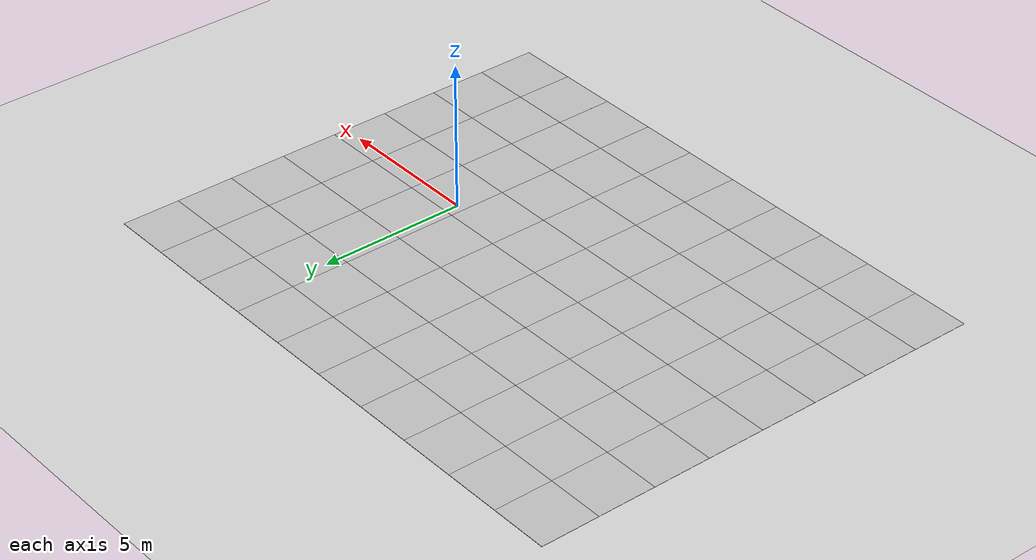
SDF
<sdf version="1.6">
 <world name="default">
  <model name="ground_plane">
   <static>1</static>
   <link name="link">
    <collision name="collision">
     <geometry><plane><normal>0 0 1</normal><size>100 100</size></plane></geometry>
     <surface>
      <contact><collide_bitmask>65535</collide_bitmask></contact>
      <friction><ode><mu>100</mu><mu2>50</mu2></ode></friction>
     </surface>
    </collision>
    <visual name="visual">
     <cast_shadows>0</cast_shadows>
     <geometry><plane><normal>0 0 1</normal><size>100 100</size></plane></geometry>
     <material>
      <script><uri>file://media/materials/scripts/gazebo.material</uri><name>Gazebo/Grey</name></script>
     </material>
    </visual>
   </link>
  </model>
  <model name="Starting_Pen_Floor">
   <link name="link">
    <inertial>
     <mass>1</mass>
     <inertia><ixx>1</ixx><ixy>0</ixy><ixz>0</ixz><iyy>1</iyy><iyz>0</iyz><izz>1</izz></inertia>
    </inertial>
    <visual name="visual_floor_31">
     <pose>-10.21 6.35 0 0 -0 0</pose>
     <geometry><box><size>2 2 0.01</size></box></geometry>
     <material>
      <script>
       <uri>model://starting_pen/materials/scripts</uri>
       <uri>model://starting_pen/materials/textures</uri>
       <name>StartingPen/Floor</name>
      </script>
      <shader type="vertex"><normal_map>__default__</normal_map></shader>
     </material>
    </visual>
    <visual name="visual_floor_18">
     <pose>3.79 2.35 0 0 -0 0</pose>
     <geometry><box><size>2 2 0.01</size></box></geometry>
     <material>
      <script>
       <uri>model://starting_pen/materials/scripts</uri>
       <uri>model://starting_pen/materials/textures</uri>
       <name>StartingPen/Floor</name>
      </script>
      <shader type="vertex"><normal_map>__default__</normal_map></shader>
     </material>
    </visual>
    <visual name="visual_floor_19">
     <pose>5.79 2.35 0 0 -0 0</pose>
     <geometry><box><size>2 2 0.01</size></box></geometry>
     <material>
      <script>
       <uri>model://starting_pen/materials/scripts</uri>
       <uri>model://starting_pen/materials/textures</uri>
       <name>StartingPen/Floor</name>
      </script>
      <shader type="vertex"><normal_map>__default__</normal_map></shader>
     </material>
    </visual>
    <visual name="visual_floor_1">
     <pose>-10.21 0.35 0 0 -0 0</pose>
     <geometry><box><size>2 2 0.01</size></box></geometry>
     <material>
      <script>
       <uri>model://starting_pen/materials/scripts</uri>
       <uri>model://starting_pen/materials/textures</uri>
       <name>StartingPen/Floor</name>
      </script>
      <shader type="vertex"><normal_map>__default__</normal_map></shader>
     </material>
    </visual>
    <visual name="visual_floor_50">
     <pose>-12.21 10.35 0 0 -0 0</pose>
     <geometry><box><size>2 2 0.01</size></box></geometry>
     <material>
      <script>
       <uri>model://starting_pen/materials/scripts</uri>
       <uri>model://starting_pen/materials/textures</uri>
       <name>StartingPen/Floor</name>
      </script>
      <shader type="vertex"><normal_map>__default__</normal_map></shader>
     </material>
    </visual>
    <visual name="visual_floor_44">
     <pose>-4.21 8.35 0 0 -0 0</pose>
     <geometry><box><size>2 2 0.01</size></box></geometry>
     <material>
      <script>
       <uri>model://starting_pen/materials/scripts</uri>
       <uri>model://starting_pen/materials/textures</uri>
       <name>StartingPen/Floor</name>
      </script>
      <shader type="vertex"><normal_map>__default__</normal_map></shader>
     </material>
    </visual>
    <visual name="visual_floor_15">
     <pose>-2.21 2.35 0 0 -0 0</pose>
     <geometry><box><size>2 2 0.01</size></box></geometry>
     <material>
      <script>
       <uri>model://starting_pen/materials/scripts</uri>
       <uri>model://starting_pen/materials/textures</uri>
       <name>StartingPen/Floor</name>
      </script>
      <shader type="vertex"><normal_map>__default__</normal_map></shader>
     </material>
    </visual>
    <visual name="visual_floor_69">
     <pose>5.79 12.35 0 0 -0 0</pose>
     <geometry><box><size>2 2 0.01</size></box></geometry>
     <material>
      <script>
       <uri>model://starting_pen/materials/scripts</uri>
       <uri>model://starting_pen/materials/textures</uri>
       <name>StartingPen/Floor</name>
      </script>
      <shader type="vertex"><normal_map>__default__</normal_map></shader>
     </material>
    </visual>
    <visual name="visual_floor_60">
     <pose>-12.21 12.35 0 0 -0 1.5707</pose>
     <geometry><box><size>2 2 0.01</size></box></geometry>
     <material>
      <script>
       <uri>model://starting_pen/materials/scripts</uri>
       <uri>model://starting_pen/materials/textures</uri>
       <name>StartingPen/FloorStripped</name>
      </script>
      <shader type="vertex"><normal_map>__default__</normal_map></shader>
     </material>
    </visual>
    <visual name="visual_floor_49">
     <pose>5.79 8.35 0 0 -0 0</pose>
     <geometry><box><size>2 2 0.01</size></box></geometry>
     <material>
      <script>
       <uri>model://starting_pen/materials/scripts</uri>
       <uri>model://starting_pen/materials/textures</uri>
       <name>StartingPen/Floor</name>
      </script>
      <shader type="vertex"><normal_map>__default__</normal_map></shader>
     </material>
    </visual>
    <visual name="visual_floor_78">
     <pose>3.79 14.35 0 0 -0 0</pose>
     <geometry><box><size>2 2 0.01</size></box></geometry>
     <material>
      <script>
       <uri>model://starting_pen/materials/scripts</uri>
       <uri>model://starting_pen/materials/textures</uri>
       <name>StartingPen/FloorStripped</name>
      </script>
      <shader type="vertex"><normal_map>__default__</normal_map></shader>
     </material>
    </visual>
    <visual name="visual_floor_46">
     <pose>-0.21 8.35 0 0 -0 1.5707</pose>
     <geometry><box><size>2 2 0.01</size></box></geometry>
     <material>
      <script>
       <uri>model://starting_pen/materials/scripts</uri>
       <uri>model://starting_pen/materials/textures</uri>
       <name>StartingPen/FloorStripped</name>
      </script>
      <shader type="vertex"><normal_map>__default__</normal_map></shader>
     </material>
    </visual>
    <visual name="visual_floor_24">
     <pose>-4.21 4.35 0 0 -0 0</pose>
     <geometry><box><size>2 2 0.01</size></box></geometry>
     <material>
      <script>
       <uri>model://starting_pen/materials/scripts</uri>
       <uri>model://starting_pen/materials/textures</uri>
       <name>StartingPen/Floor</name>
      </script>
      <shader type="vertex"><normal_map>__default__</normal_map></shader>
     </material>
    </visual>
    <visual name="visual_floor_67">
     <pose>1.79 12.35 0 0 -0 0</pose>
     <geometry><box><size>2 2 0.01</size></box></geometry>
     <material>
      <script>
       <uri>model://starting_pen/materials/scripts</uri>
       <uri>model://starting_pen/materials/textures</uri>
       <name>StartingPen/Floor</name>
      </script>
      <shader type="vertex"><normal_map>__default__</normal_map></shader>
     </material>
    </visual>
    <visual name="visual_floor_8">
     <pose>3.79 0.35 0 0 -0 0</pose>
     <geometry><box><size>2 2 0.01</size></box></geometry>
     <material>
      <script>
       <uri>model://starting_pen/materials/scripts</uri>
       <uri>model://starting_pen/materials/textures</uri>
       <name>StartingPen/Floor</name>
      </script>
      <shader type="vertex"><normal_map>__default__</normal_map></shader>
     </material>
    </visual>
    <visual name="visual_floor_7">
     <pose>1.79 0.35 0 0 -0 1.5707</pose>
     <geometry><box><size>2 2 0.01</size></box></geometry>
     <material>
      <script>
       <uri>model://starting_pen/materials/scripts</uri>
       <uri>model://starting_pen/materials/textures</uri>
       <name>StartingPen/FloorStripped</name>
      </script>
      <shader type="vertex"><normal_map>__default__</normal_map></shader>
     </material>
    </visual>
    <visual name="visual_floor_4">
     <pose>-4.21 0.35 0 0 -0 0</pose>
     <geometry><box><size>2 2 0.01</size></box></geometry>
     <material>
      <script>
       <uri>model://starting_pen/materials/scripts</uri>
       <uri>model://starting_pen/materials/textures</uri>
       <name>StartingPen/Floor</name>
      </script>
      <shader type="vertex"><normal_map>__default__</normal_map></shader>
     </material>
    </visual>
    <visual name="visual_floor_43">
     <pose>-6.21 8.35 0 0 -0 0</pose>
     <geometry><box><size>2 2 0.01</size></box></geometry>
     <material>
      <script>
       <uri>model://starting_pen/materials/scripts</uri>
       <uri>model://starting_pen/materials/textures</uri>
       <name>StartingPen/Floor</name>
      </script>
      <shader type="vertex"><normal_map>__default__</normal_map></shader>
     </material>
    </visual>
    <visual name="visual_floor_47">
     <pose>1.79 8.35 0 0 -0 0</pose>
     <geometry><box><size>2 2 0.01</size></box></geometry>
     <material>
      <script>
       <uri>model://starting_pen/materials/scripts</uri>
       <uri>model://starting_pen/materials/textures</uri>
       <name>StartingPen/Floor</name>
      </script>
      <shader type="vertex"><normal_map>__default__</normal_map></shader>
     </material>
    </visual>
    <visual name="visual_floor_70">
     <pose>-12.21 14.35 0 0 -0 0</pose>
     <geometry><box><size>2 2 0.01</size></box></geometry>
     <material>
      <script>
       <uri>model://starting_pen/materials/scripts</uri>
       <uri>model://starting_pen/materials/textures</uri>
       <name>StartingPen/Floor</name>
      </script>
      <shader type="vertex"><normal_map>__default__</normal_map></shader>
     </material>
    </visual>
    <visual name="visual_floor_29">
     <pose>5.79 4.35 0 0 -0 1.5707</pose>
     <geometry><box><size>2 2 0.01</size></box></geometry>
     <material>
      <script>
       <uri>model://starting_pen/materials/scripts</uri>
       <uri>model://starting_pen/materials/textures</uri>
       <name>StartingPen/FloorStripped</name>
      </script>
      <shader type="vertex"><normal_map>__default__</normal_map></shader>
     </material>
    </visual>
    <visual name="visual_floor_68">
     <pose>3.79 12.35 0 0 -0 0</pose>
     <geometry><box><size>2 2 0.01</size></box></geometry>
     <material>
      <script>
       <uri>model://starting_pen/materials/scripts</uri>
       <uri>model://starting_pen/materials/textures</uri>
       <name>StartingPen/Floor</name>
      </script>
      <shader type="vertex"><normal_map>__default__</normal_map></shader>
     </material>
    </visual>
    <visual name="visual_floor_34">
     <pose>-4.21 6.35 0 0 -0 0</pose>
     <geometry><box><size>2 2 0.01</size></box></geometry>
     <material>
      <script>
       <uri>model://starting_pen/materials/scripts</uri>
       <uri>model://starting_pen/materials/textures</uri>
       <name>StartingPen/Floor</name>
      </script>
      <shader type="vertex"><normal_map>__default__</normal_map></shader>
     </material>
    </visual>
    <visual name="visual_floor_16">
     <pose>-0.21 2.35 0 0 -0 1.5707</pose>
     <geometry><box><size>2 2 0.01</size></box></geometry>
     <material>
      <script>
       <uri>model://starting_pen/materials/scripts</uri>
       <uri>model://starting_pen/materials/textures</uri>
       <name>StartingPen/FloorStripped</name>
      </script>
      <shader type="vertex"><normal_map>__default__</normal_map></shader>
     </material>
    </visual>
    <visual name="visual_floor_35">
     <pose>-2.21 6.35 0 0 -0 1.5707</pose>
     <geometry><box><size>2 2 0.01</size></box></geometry>
     <material>
      <script>
       <uri>model://starting_pen/materials/scripts</uri>
       <uri>model://starting_pen/materials/textures</uri>
       <name>StartingPen/FloorStripped</name>
      </script>
      <shader type="vertex"><normal_map>__default__</normal_map></shader>
     </material>
    </visual>
    <visual name="visual_floor_32">
     <pose>-8.21 6.35 0 0 -0 0</pose>
     <geometry><box><size>2 2 0.01</size></box></geometry>
     <material>
      <script>
       <uri>model://starting_pen/materials/scripts</uri>
       <uri>model://starting_pen/materials/textures</uri>
       <name>StartingPen/Floor</name>
      </script>
      <shader type="vertex"><normal_map>__default__</normal_map></shader>
     </material>
    </visual>
    <visual name="visual_floor_53">
     <pose>-6.21 10.35 0 0 -0 1.5707</pose>
     <geometry><box><size>2 2 0.01</size></box></geometry>
     <material>
      <script>
       <uri>model://starting_pen/materials/scripts</uri>
       <uri>model://starting_pen/materials/textures</uri>
       <name>StartingPen/FloorStripped</name>
      </script>
      <shader type="vertex"><normal_map>__default__</normal_map></shader>
     </material>
    </visual>
    <visual name="visual_floor_59">
     <pose>5.79 10.35 0 0 -0 0</pose>
     <geometry><box><size>2 2 0.01</size></box></geometry>
     <material>
      <script>
       <uri>model://starting_pen/materials/scripts</uri>
       <uri>model://starting_pen/materials/textures</uri>
       <name>StartingPen/Floor</name>
      </script>
      <shader type="vertex"><normal_map>__default__</normal_map></shader>
     </material>
    </visual>
    <visual name="visual_floor_48">
     <pose>3.79 8.35 0 0 -0 0</pose>
     <geometry><box><size>2 2 0.01</size></box></geometry>
     <material>
      <script>
       <uri>model://starting_pen/materials/scripts</uri>
       <uri>model://starting_pen/materials/textures</uri>
       <name>StartingPen/Floor</name>
      </script>
      <shader type="vertex"><normal_map>__default__</normal_map></shader>
     </material>
    </visual>
    <visual name="visual_floor_6">
     <pose>-0.21 0.35 0 0 -0 0</pose>
     <geometry><box><size>2 2 0.01</size></box></geometry>
     <material>
      <script>
       <uri>model://starting_pen/materials/scripts</uri>
       <uri>model://starting_pen/materials/textures</uri>
       <name>StartingPen/Floor</name>
      </script>
      <shader type="vertex"><normal_map>__default__</normal_map></shader>
     </material>
    </visual>
    <visual name="visual_floor_13">
     <pose>-6.21 2.35 0 0 -0 0</pose>
     <geometry><box><size>2 2 0.01</size></box></geometry>
     <material>
      <script>
       <uri>model://starting_pen/materials/scripts</uri>
       <uri>model://starting_pen/materials/textures</uri>
       <name>StartingPen/Floor</name>
      </script>
      <shader type="vertex"><normal_map>__default__</normal_map></shader>
     </material>
    </visual>
    <visual name="visual_floor_79">
     <pose>5.79 14.35 0 0 -0 0</pose>
     <geometry><box><size>2 2 0.01</size></box></geometry>
     <material>
      <script>
       <uri>model://starting_pen/materials/scripts</uri>
       <uri>model://starting_pen/materials/textures</uri>
       <name>StartingPen/Floor</name>
      </script>
      <shader type="vertex"><normal_map>__default__</normal_map></shader>
     </material>
    </visual>
    <visual name="visual_floor_51">
     <pose>-10.21 10.35 0 0 -0 0</pose>
     <geometry><box><size>2 2 0.01</size></box></geometry>
     <material>
      <script>
       <uri>model://starting_pen/materials/scripts</uri>
       <uri>model://starting_pen/materials/textures</uri>
       <name>StartingPen/Floor</name>
      </script>
      <shader type="vertex"><normal_map>__default__</normal_map></shader>
     </material>
    </visual>
    <visual name="visual_floor_55">
     <pose>-2.21 10.35 0 0 -0 0</pose>
     <geometry><box><size>2 2 0.01</size></box></geometry>
     <material>
      <script>
       <uri>model://starting_pen/materials/scripts</uri>
       <uri>model://starting_pen/materials/textures</uri>
       <name>StartingPen/Floor</name>
      </script>
      <shader type="vertex"><normal_map>__default__</normal_map></shader>
     </material>
    </visual>
    <visual name="visual_floor_5">
     <pose>-2.21 0.35 0 0 -0 0</pose>
     <geometry><box><size>2 2 0.01</size></box></geometry>
     <material>
      <script>
       <uri>model://starting_pen/materials/scripts</uri>
       <uri>model://starting_pen/materials/textures</uri>
       <name>StartingPen/Floor</name>
      </script>
      <shader type="vertex"><normal_map>__default__</normal_map></shader>
     </material>
    </visual>
    <visual name="visual_floor_36">
     <pose>-0.21 6.35 0 0 -0 0</pose>
     <geometry><box><size>2 2 0.01</size></box></geometry>
     <material>
      <script>
       <uri>model://starting_pen/materials/scripts</uri>
       <uri>model://starting_pen/materials/textures</uri>
       <name>StartingPen/Floor</name>
      </script>
      <shader type="vertex"><normal_map>__default__</normal_map></shader>
     </material>
    </visual>
    <visual name="visual_floor_62">
     <pose>-8.21 12.35 0 0 -0 0</pose>
     <geometry><box><size>2 2 0.01</size></box></geometry>
     <material>
      <script>
       <uri>model://starting_pen/materials/scripts</uri>
       <uri>model://starting_pen/materials/textures</uri>
       <name>StartingPen/Floor</name>
      </script>
      <shader type="vertex"><normal_map>__default__</normal_map></shader>
     </material>
    </visual>
    <visual name="visual_floor_75">
     <pose>-2.21 14.35 0 0 -0 1.5707</pose>
     <geometry><box><size>2 2 0.01</size></box></geometry>
     <material>
      <script>
       <uri>model://starting_pen/materials/scripts</uri>
       <uri>model://starting_pen/materials/textures</uri>
       <name>StartingPen/Floor</name>
      </script>
      <shader type="vertex"><normal_map>__default__</normal_map></shader>
     </material>
    </visual>
    <visual name="visual_floor_64">
     <pose>-4.21 12.35 0 0 -0 0</pose>
     <geometry><box><size>2 2 0.01</size></box></geometry>
     <material>
      <script>
       <uri>model://starting_pen/materials/scripts</uri>
       <uri>model://starting_pen/materials/textures</uri>
       <name>StartingPen/Floor</name>
      </script>
      <shader type="vertex"><normal_map>__default__</normal_map></shader>
     </material>
    </visual>
    <visual name="visual_floor_42">
     <pose>-8.21 8.35 0 0 -0 1.5707</pose>
     <geometry><box><size>2 2 0.01</size></box></geometry>
     <material>
      <script>
       <uri>model://starting_pen/materials/scripts</uri>
       <uri>model://starting_pen/materials/textures</uri>
       <name>StartingPen/FloorStripped</name>
      </script>
      <shader type="vertex"><normal_map>__default__</normal_map></shader>
     </material>
    </visual>
    <visual name="visual_floor_30">
     <pose>-12.21 6.35 0 0 -0 0</pose>
     <geometry><box><size>2 2 0.01</size></box></geometry>
     <material>
      <script>
       <uri>model://starting_pen/materials/scripts</uri>
       <uri>model://starting_pen/materials/textures</uri>
       <name>StartingPen/Floor</name>
      </script>
      <shader type="vertex"><normal_map>__default__</normal_map></shader>
     </material>
    </visual>
    <visual name="visual_floor_45">
     <pose>-2.21 8.35 0 0 -0 0</pose>
     <geometry><box><size>2 2 0.01</size></box></geometry>
     <material>
      <script>
       <uri>model://starting_pen/materials/scripts</uri>
       <uri>model://starting_pen/materials/textures</uri>
       <name>StartingPen/Floor</name>
      </script>
      <shader type="vertex"><normal_map>__default__</normal_map></shader>
     </material>
    </visual>
    <visual name="visual_floor_27">
     <pose>1.79 4.35 0 0 -0 0</pose>
     <geometry><box><size>2 2 0.01</size></box></geometry>
     <material>
      <script>
       <uri>model://starting_pen/materials/scripts</uri>
       <uri>model://starting_pen/materials/textures</uri>
       <name>StartingPen/Floor</name>
      </script>
      <shader type="vertex"><normal_map>__default__</normal_map></shader>
     </material>
    </visual>
    <visual name="visual_floor_2">
     <pose>-8.21 0.35 0 0 -0 0</pose>
     <geometry><box><size>2 2 0.01</size></box></geometry>
     <material>
      <script>
       <uri>model://starting_pen/materials/scripts</uri>
       <uri>model://starting_pen/materials/textures</uri>
       <name>StartingPen/Floor</name>
      </script>
      <shader type="vertex"><normal_map>__default__</normal_map></shader>
     </material>
    </visual>
    <visual name="visual_floor_57">
     <pose>1.79 10.35 0 0 -0 0</pose>
     <geometry><box><size>2 2 0.01</size></box></geometry>
     <material>
      <script>
       <uri>model://starting_pen/materials/scripts</uri>
       <uri>model://starting_pen/materials/textures</uri>
       <name>StartingPen/Floor</name>
      </script>
      <shader type="vertex"><normal_map>__default__</normal_map></shader>
     </material>
    </visual>
    <visual name="visual_floor_73">
     <pose>-6.21 14.35 0 0 -0 0</pose>
     <geometry><box><size>2 2 0.01</size></box></geometry>
     <material>
      <script>
       <uri>model://starting_pen/materials/scripts</uri>
       <uri>model://starting_pen/materials/textures</uri>
       <name>StartingPen/Floor</name>
      </script>
      <shader type="vertex"><normal_map>__default__</normal_map></shader>
     </material>
    </visual>
    <visual name="visual_floor_21">
     <pose>-10.21 4.35 0 0 -0 0</pose>
     <geometry><box><size>2 2 0.01</size></box></geometry>
     <material>
      <script>
       <uri>model://starting_pen/materials/scripts</uri>
       <uri>model://starting_pen/materials/textures</uri>
       <name>StartingPen/Floor</name>
      </script>
      <shader type="vertex"><normal_map>__default__</normal_map></shader>
     </material>
    </visual>
    <visual name="visual_floor_74">
     <pose>-4.21 14.35 0 0 -0 1.5707</pose>
     <geometry><box><size>2 2 0.01</size></box></geometry>
     <material>
      <script>
       <uri>model://starting_pen/materials/scripts</uri>
       <uri>model://starting_pen/materials/textures</uri>
       <name>StartingPen/FloorStripped</name>
      </script>
      <shader type="vertex"><normal_map>__default__</normal_map></shader>
     </material>
    </visual>
    <visual name="visual_floor_71">
     <pose>-10.21 14.35 0 0 -0 0</pose>
     <geometry><box><size>2 2 0.01</size></box></geometry>
     <material>
      <script>
       <uri>model://starting_pen/materials/scripts</uri>
       <uri>model://starting_pen/materials/textures</uri>
       <name>StartingPen/Floor</name>
      </script>
      <shader type="vertex"><normal_map>__default__</normal_map></shader>
     </material>
    </visual>
    <visual name="visual_floor_77">
     <pose>1.79 14.35 0 0 -0 0</pose>
     <geometry><box><size>2 2 0.01</size></box></geometry>
     <material>
      <script>
       <uri>model://starting_pen/materials/scripts</uri>
       <uri>model://starting_pen/materials/textures</uri>
       <name>StartingPen/Floor</name>
      </script>
      <shader type="vertex"><normal_map>__default__</normal_map></shader>
     </material>
    </visual>
    <visual name="visual_floor_12">
     <pose>-8.21 2.35 0 0 -0 0</pose>
     <geometry><box><size>2 2 0.01</size></box></geometry>
     <material>
      <script>
       <uri>model://starting_pen/materials/scripts</uri>
       <uri>model://starting_pen/materials/textures</uri>
       <name>StartingPen/Floor</name>
      </script>
      <shader type="vertex"><normal_map>__default__</normal_map></shader>
     </material>
    </visual>
    <visual name="visual_floor_61">
     <pose>-10.21 12.35 0 0 -0 0</pose>
     <geometry><box><size>2 2 0.01</size></box></geometry>
     <material>
      <script>
       <uri>model://starting_pen/materials/scripts</uri>
       <uri>model://starting_pen/materials/textures</uri>
       <name>StartingPen/Floor</name>
      </script>
      <shader type="vertex"><normal_map>__default__</normal_map></shader>
     </material>
    </visual>
    <visual name="visual_floor_66">
     <pose>-0.21 12.35 0 0 -0 0</pose>
     <geometry><box><size>2 2 0.01</size></box></geometry>
     <material>
      <script>
       <uri>model://starting_pen/materials/scripts</uri>
       <uri>model://starting_pen/materials/textures</uri>
       <name>StartingPen/Floor</name>
      </script>
      <shader type="vertex"><normal_map>__default__</normal_map></shader>
     </material>
    </visual>
    <visual name="visual_floor_54">
     <pose>-4.21 10.35 0 0 -0 0</pose>
     <geometry><box><size>2 2 0.01</size></box></geometry>
     <material>
      <script>
       <uri>model://starting_pen/materials/scripts</uri>
       <uri>model://starting_pen/materials/textures</uri>
       <name>StartingPen/Floor</name>
      </script>
      <shader type="vertex"><normal_map>__default__</normal_map></shader>
     </material>
    </visual>
    <visual name="visual_floor_11">
     <pose>-10.21 2.35 0 0 -0 0</pose>
     <geometry><box><size>2 2 0.01</size></box></geometry>
     <material>
      <script>
       <uri>model://starting_pen/materials/scripts</uri>
       <uri>model://starting_pen/materials/textures</uri>
       <name>StartingPen/Floor</name>
      </script>
      <shader type="vertex"><normal_map>__default__</normal_map></shader>
     </material>
    </visual>
    <visual name="visual_floor_10">
     <pose>-12.21 2.35 0 0 -0 1.5707</pose>
     <geometry><box><size>2 2 0.01</size></box></geometry>
     <material>
      <script>
       <uri>model://starting_pen/materials/scripts</uri>
       <uri>model://starting_pen/materials/textures</uri>
       <name>StartingPen/FloorStripped</name>
      </script>
      <shader type="vertex"><normal_map>__default__</normal_map></shader>
     </material>
    </visual>
    <visual name="visual_floor_58">
     <pose>3.79 10.35 0 0 -0 0</pose>
     <geometry><box><size>2 2 0.01</size></box></geometry>
     <material>
      <script>
       <uri>model://starting_pen/materials/scripts</uri>
       <uri>model://starting_pen/materials/textures</uri>
       <name>StartingPen/Floor</name>
      </script>
      <shader type="vertex"><normal_map>__default__</normal_map></shader>
     </material>
    </visual>
    <visual name="visual_floor_37">
     <pose>1.79 6.35 0 0 -0 0</pose>
     <geometry><box><size>2 2 0.01</size></box></geometry>
     <material>
      <script>
       <uri>model://starting_pen/materials/scripts</uri>
       <uri>model://starting_pen/materials/textures</uri>
       <name>StartingPen/Floor</name>
      </script>
      <shader type="vertex"><normal_map>__default__</normal_map></shader>
     </material>
    </visual>
    <visual name="visual_floor_0">
     <pose>-12.21 0.35 0 0 -0 0</pose>
     <geometry><box><size>2 2 0.01</size></box></geometry>
     <material>
      <script>
       <uri>model://starting_pen/materials/scripts</uri>
       <uri>model://starting_pen/materials/textures</uri>
       <name>StartingPen/Floor</name>
      </script>
      <shader type="vertex"><normal_map>__default__</normal_map></shader>
     </material>
    </visual>
    <visual name="visual_floor_56">
     <pose>-0.21 10.35 0 0 -0 0</pose>
     <geometry><box><size>2 2 0.01</size></box></geometry>
     <material>
      <script>
       <uri>model://starting_pen/materials/scripts</uri>
       <uri>model://starting_pen/materials/textures</uri>
       <name>StartingPen/Floor</name>
      </script>
      <shader type="vertex"><normal_map>__default__</normal_map></shader>
     </material>
    </visual>
    <visual name="visual_floor_40">
     <pose>-12.21 8.35 0 0 -0 0</pose>
     <geometry><box><size>2 2 0.01</size></box></geometry>
     <material>
      <script>
       <uri>model://starting_pen/materials/scripts</uri>
       <uri>model://starting_pen/materials/textures</uri>
       <name>StartingPen/Floor</name>
      </script>
      <shader type="vertex"><normal_map>__default__</normal_map></shader>
     </material>
    </visual>
    <visual name="visual_floor_17">
     <pose>1.79 2.35 0 0 -0 1.5707</pose>
     <geometry><box><size>2 2 0.01</size></box></geometry>
     <material>
      <script>
       <uri>model://starting_pen/materials/scripts</uri>
       <uri>model://starting_pen/materials/textures</uri>
       <name>StartingPen/Floor</name>
      </script>
      <shader type="vertex"><normal_map>__default__</normal_map></shader>
     </material>
    </visual>
    <visual name="visual_floor_63">
     <pose>-6.21 12.35 0 0 -0 0</pose>
     <geometry><box><size>2 2 0.01</size></box></geometry>
     <material>
      <script>
       <uri>model://starting_pen/materials/scripts</uri>
       <uri>model://starting_pen/materials/textures</uri>
       <name>StartingPen/Floor</name>
      </script>
      <shader type="vertex"><normal_map>__default__</normal_map></shader>
     </material>
    </visual>
    <visual name="visual_floor_65">
     <pose>-2.21 12.35 0 0 -0 1.5707</pose>
     <geometry><box><size>2 2 0.01</size></box></geometry>
     <material>
      <script>
       <uri>model://starting_pen/materials/scripts</uri>
       <uri>model://starting_pen/materials/textures</uri>
       <name>StartingPen/FloorStripped</name>
      </script>
      <shader type="vertex"><normal_map>__default__</normal_map></shader>
     </material>
    </visual>
    <visual name="visual_floor_38">
     <pose>3.79 6.35 0 0 -0 0</pose>
     <geometry><box><size>2 2 0.01</size></box></geometry>
     <material>
      <script>
       <uri>model://starting_pen/materials/scripts</uri>
       <uri>model://starting_pen/materials/textures</uri>
       <name>StartingPen/Floor</name>
      </script>
      <shader type="vertex"><normal_map>__default__</normal_map></shader>
     </material>
    </visual>
    <visual name="visual_floor_22">
     <pose>-8.21 4.35 0 0 -0 1.5707</pose>
     <geometry><box><size>2 2 0.01</size></box></geometry>
     <material>
      <script>
       <uri>model://starting_pen/materials/scripts</uri>
       <uri>model://starting_pen/materials/textures</uri>
       <name>StartingPen/FloorStripped</name>
      </script>
      <shader type="vertex"><normal_map>__default__</normal_map></shader>
     </material>
    </visual>
    <visual name="visual_floor_23">
     <pose>-6.21 4.35 0 0 -0 0</pose>
     <geometry><box><size>2 2 0.01</size></box></geometry>
     <material>
      <script>
       <uri>model://starting_pen/materials/scripts</uri>
       <uri>model://starting_pen/materials/textures</uri>
       <name>StartingPen/Floor</name>
      </script>
      <shader type="vertex"><normal_map>__default__</normal_map></shader>
     </material>
    </visual>
    <visual name="visual_floor_41">
     <pose>-10.21 8.35 0 0 -0 0</pose>
     <geometry><box><size>2 2 0.01</size></box></geometry>
     <material>
      <script>
       <uri>model://starting_pen/materials/scripts</uri>
       <uri>model://starting_pen/materials/textures</uri>
       <name>StartingPen/Floor</name>
      </script>
      <shader type="vertex"><normal_map>__default__</normal_map></shader>
     </material>
    </visual>
    <visual name="visual_floor_76">
     <pose>-0.21 14.35 0 0 -0 0</pose>
     <geometry><box><size>2 2 0.01</size></box></geometry>
     <material>
      <script>
       <uri>model://starting_pen/materials/scripts</uri>
       <uri>model://starting_pen/materials/textures</uri>
       <name>StartingPen/Floor</name>
      </script>
      <shader type="vertex"><normal_map>__default__</normal_map></shader>
     </material>
    </visual>
    <visual name="visual_floor_28">
     <pose>3.79 4.35 0 0 -0 0</pose>
     <geometry><box><size>2 2 0.01</size></box></geometry>
     <material>
      <script>
       <uri>model://starting_pen/materials/scripts</uri>
       <uri>model://starting_pen/materials/textures</uri>
       <name>StartingPen/Floor</name>
      </script>
      <shader type="vertex"><normal_map>__default__</normal_map></shader>
     </material>
    </visual>
    <visual name="visual_floor_52">
     <pose>-8.21 10.35 0 0 -0 0</pose>
     <geometry><box><size>2 2 0.01</size></box></geometry>
     <material>
      <script>
       <uri>model://starting_pen/materials/scripts</uri>
       <uri>model://starting_pen/materials/textures</uri>
       <name>StartingPen/Floor</name>
      </script>
      <shader type="vertex"><normal_map>__default__</normal_map></shader>
     </material>
    </visual>
    <visual name="visual_floor_3">
     <pose>-6.21 0.35 0 0 -0 0</pose>
     <geometry><box><size>2 2 0.01</size></box></geometry>
     <material>
      <script>
       <uri>model://starting_pen/materials/scripts</uri>
       <uri>model://starting_pen/materials/textures</uri>
       <name>StartingPen/Floor</name>
      </script>
      <shader type="vertex"><normal_map>__default__</normal_map></shader>
     </material>
    </visual>
    <visual name="visual_floor_20">
     <pose>-12.21 4.35 0 0 -0 0</pose>
     <geometry><box><size>2 2 0.01</size></box></geometry>
     <material>
      <script>
       <uri>model://starting_pen/materials/scripts</uri>
       <uri>model://starting_pen/materials/textures</uri>
       <name>StartingPen/Floor</name>
      </script>
      <shader type="vertex"><normal_map>__default__</normal_map></shader>
     </material>
    </visual>
    <visual name="visual_floor_72">
     <pose>-8.21 14.35 0 0 -0 0</pose>
     <geometry><box><size>2 2 0.01</size></box></geometry>
     <material>
      <script>
       <uri>model://starting_pen/materials/scripts</uri>
       <uri>model://starting_pen/materials/textures</uri>
       <name>StartingPen/Floor</name>
      </script>
      <shader type="vertex"><normal_map>__default__</normal_map></shader>
     </material>
    </visual>
    <visual name="visual_floor_33">
     <pose>-6.21 6.35 0 0 -0 1.5707</pose>
     <geometry><box><size>2 2 0.01</size></box></geometry>
     <material>
      <script>
       <uri>model://starting_pen/materials/scripts</uri>
       <uri>model://starting_pen/materials/textures</uri>
       <name>StartingPen/FloorStripped</name>
      </script>
      <shader type="vertex"><normal_map>__default__</normal_map></shader>
     </material>
    </visual>
    <visual name="visual_floor_39">
     <pose>5.79 6.35 0 0 -0 0</pose>
     <geometry><box><size>2 2 0.01</size></box></geometry>
     <material>
      <script>
       <uri>model://starting_pen/materials/scripts</uri>
       <uri>model://starting_pen/materials/textures</uri>
       <name>StartingPen/Floor</name>
      </script>
      <shader type="vertex"><normal_map>__default__</normal_map></shader>
     </material>
    </visual>
    <visual name="visual_floor_26">
     <pose>-0.21 4.35 0 0 -0 0</pose>
     <geometry><box><size>2 2 0.01</size></box></geometry>
     <material>
      <script>
       <uri>model://starting_pen/materials/scripts</uri>
       <uri>model://starting_pen/materials/textures</uri>
       <name>StartingPen/Floor</name>
      </script>
      <shader type="vertex"><normal_map>__default__</normal_map></shader>
     </material>
    </visual>
    <visual name="visual_floor_25">
     <pose>-2.21 4.35 0 0 -0 0</pose>
     <geometry><box><size>2 2 0.01</size></box></geometry>
     <material>
      <script>
       <uri>model://starting_pen/materials/scripts</uri>
       <uri>model://starting_pen/materials/textures</uri>
       <name>StartingPen/Floor</name>
      </script>
      <shader type="vertex"><normal_map>__default__</normal_map></shader>
     </material>
    </visual>
    <visual name="visual_floor_14">
     <pose>-4.21 2.35 0 0 -0 0</pose>
     <geometry><box><size>2 2 0.01</size></box></geometry>
     <material>
      <script>
       <uri>model://starting_pen/materials/scripts</uri>
       <uri>model://starting_pen/materials/textures</uri>
       <name>StartingPen/Floor</name>
      </script>
      <shader type="vertex"><normal_map>__default__</normal_map></shader>
     </material>
    </visual>
    <visual name="visual_floor_9">
     <pose>5.79 0.35 0 0 -0 0</pose>
     <geometry><box><size>2 2 0.01</size></box></geometry>
     <material>
      <script>
       <uri>model://starting_pen/materials/scripts</uri>
       <uri>model://starting_pen/materials/textures</uri>
       <name>StartingPen/Floor</name>
      </script>
      <shader type="vertex"><normal_map>__default__</normal_map></shader>
     </material>
    </visual>
   </link>
   <static>1</static>
   <pose>-1.07717 -6.88385 0 0 -0 0</pose>
  </model>
 </world>
</sdf>
